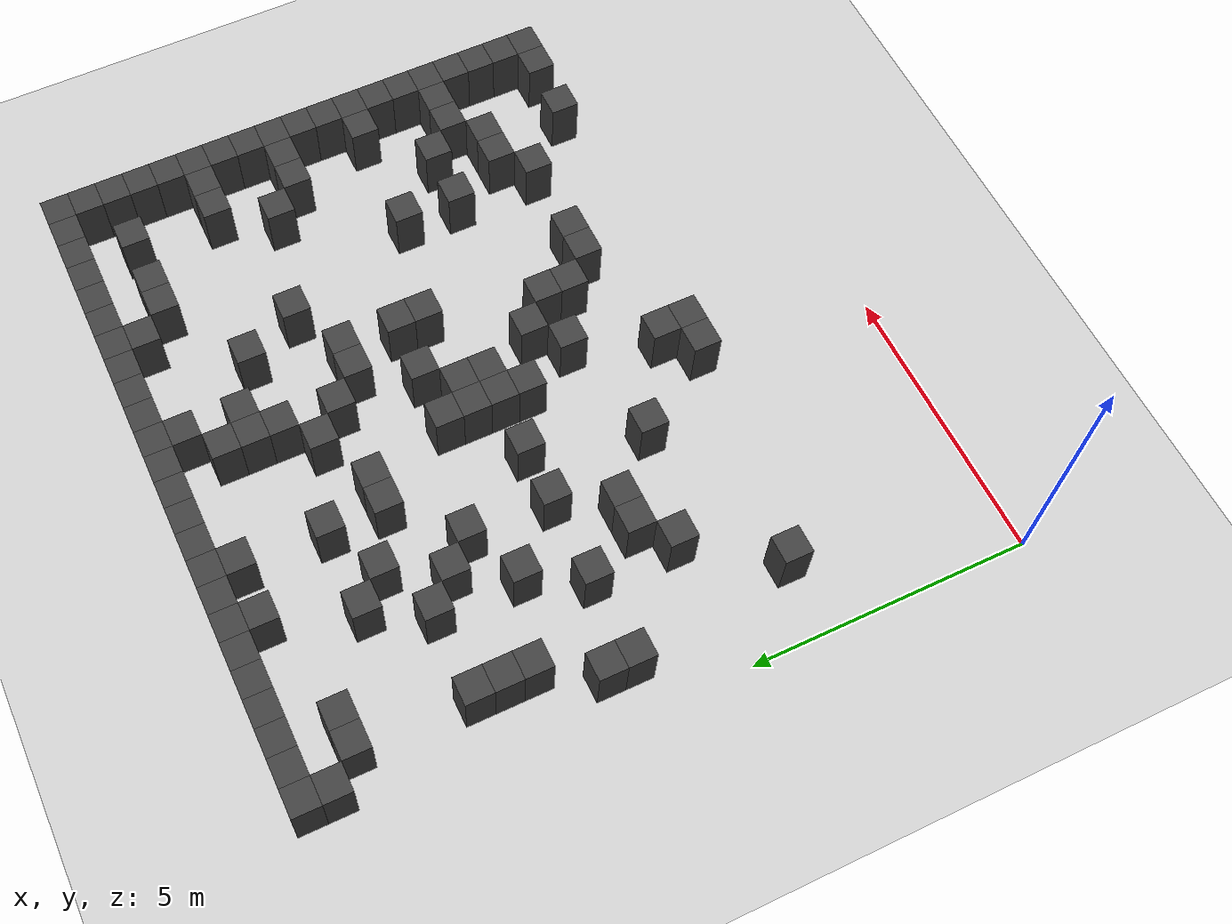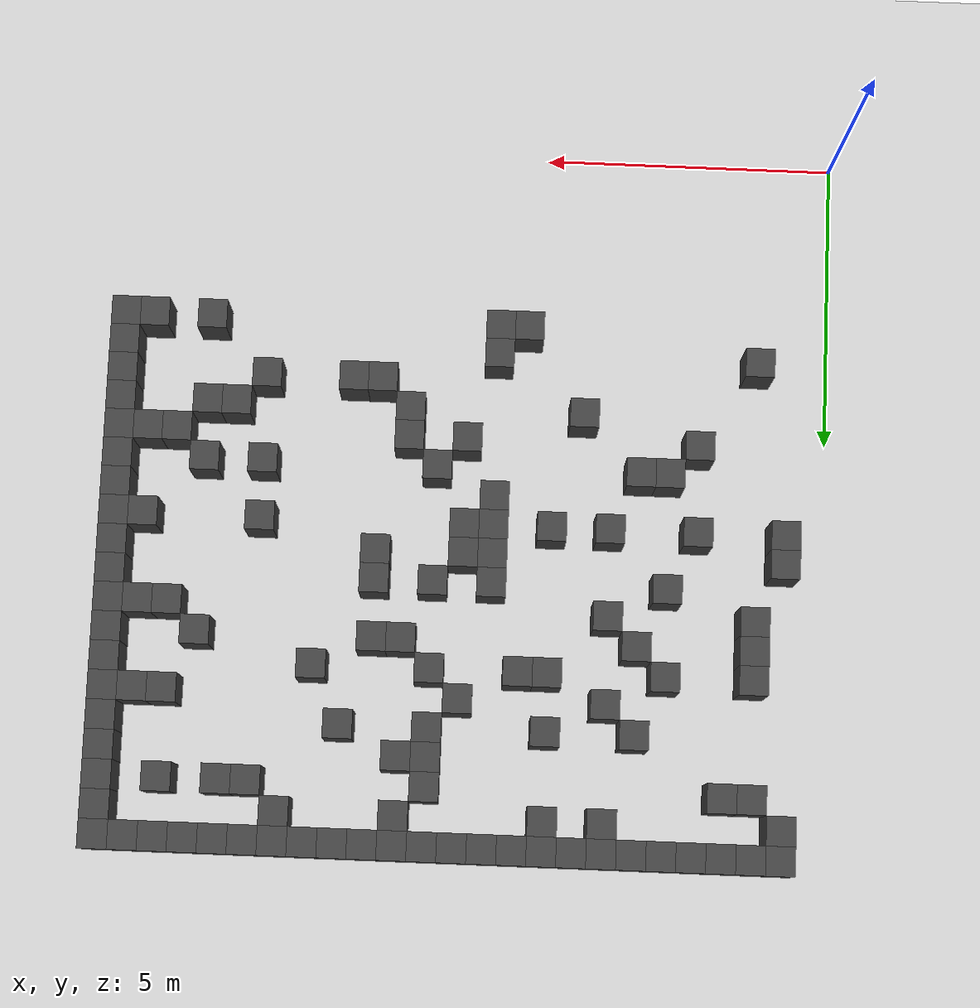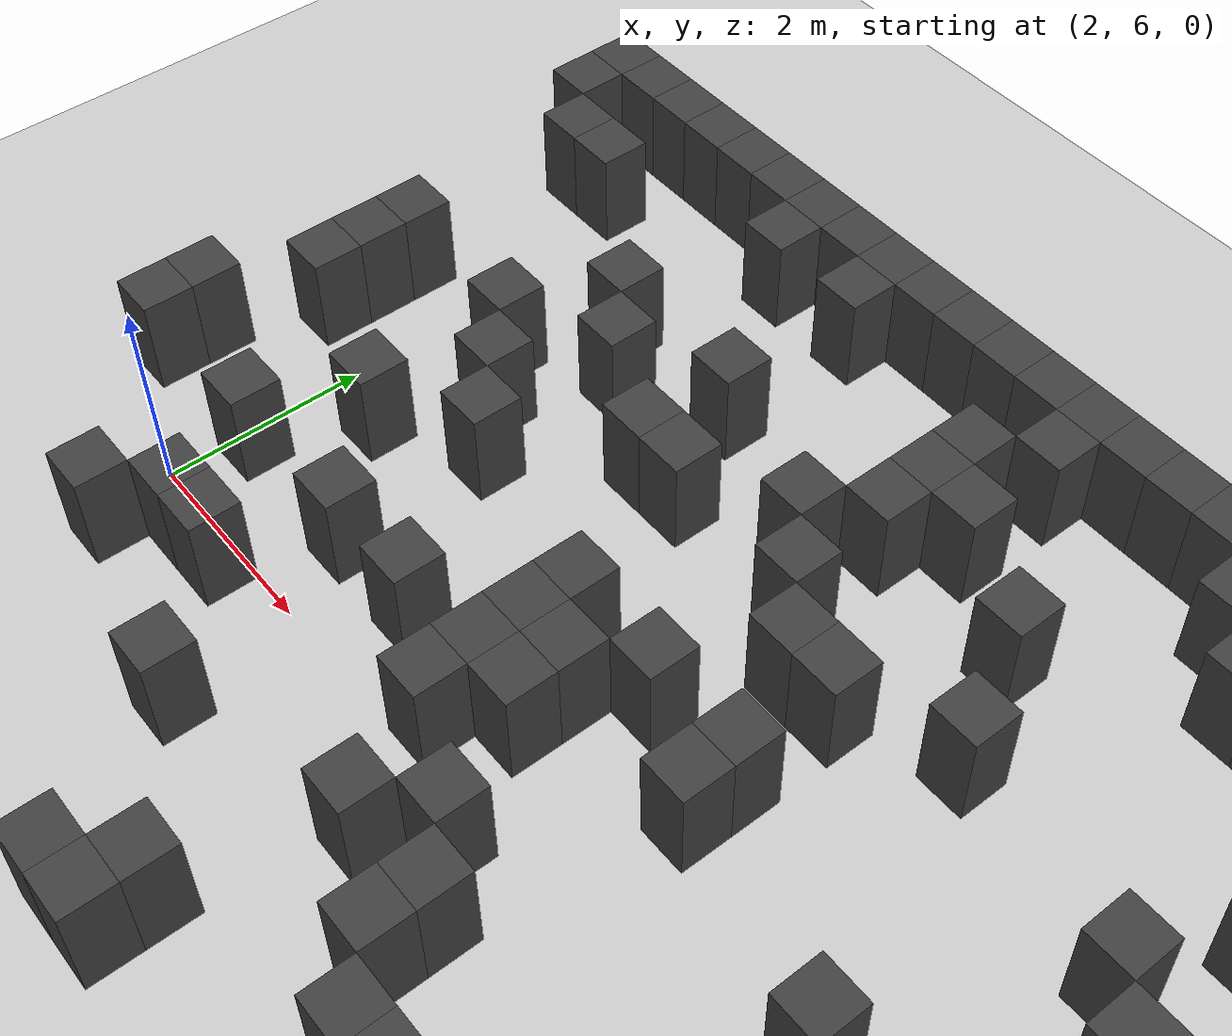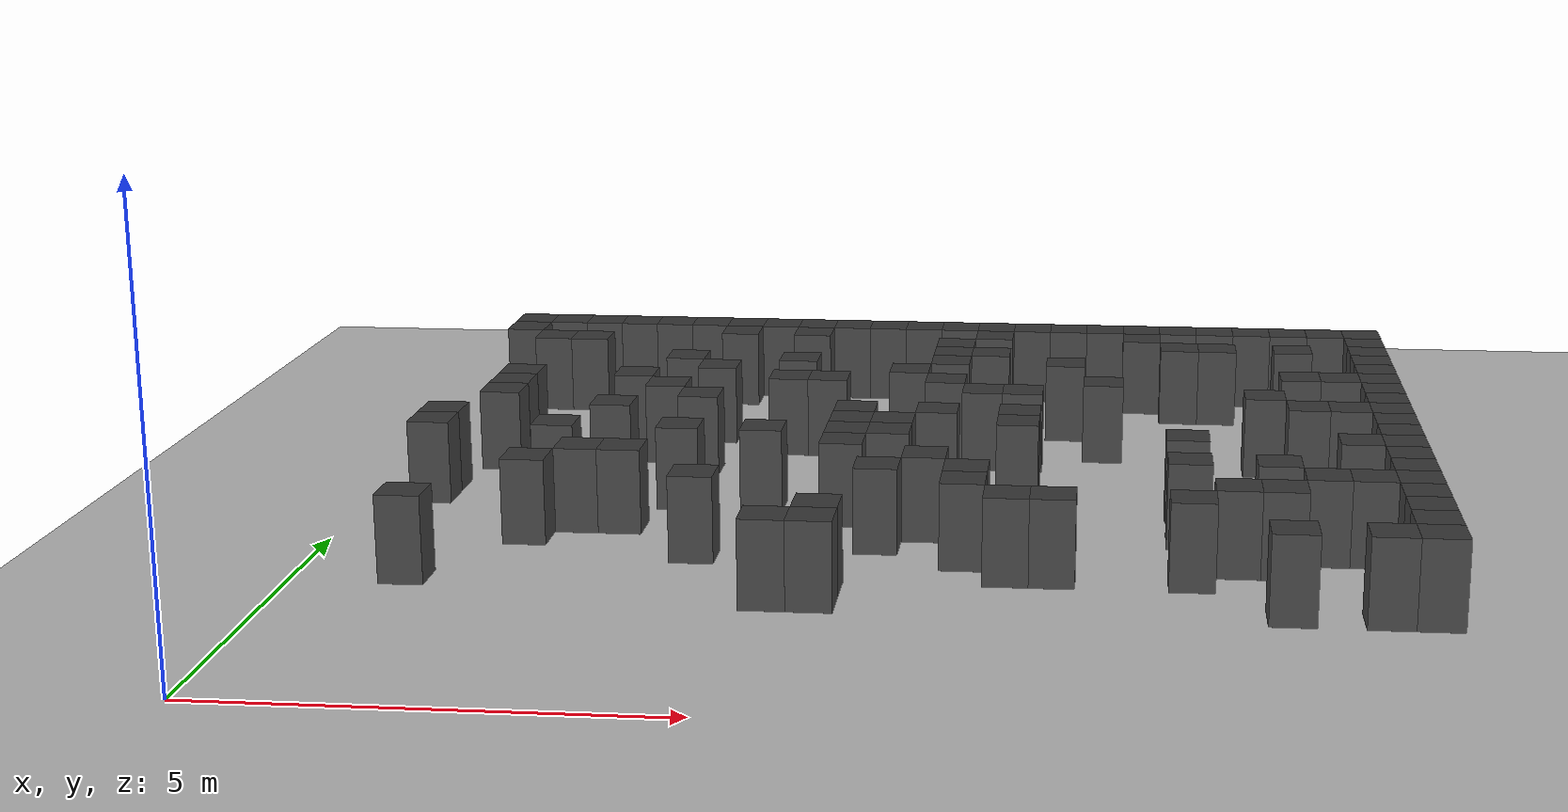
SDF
<sdf version="1.7">
 <world name="map_4581">
  <model name="ground_plane">
   <static>true</static>
   <link name="link">
    <collision name="collision">
     <geometry><plane><normal>0 0 1</normal><size>200 200</size></plane></geometry>
    </collision>
    <visual name="visual">
     <geometry><plane><normal>0 0 1</normal><size>200 200</size></plane></geometry>
     <material><ambient>0.8 0.8 0.8 1</ambient><diffuse>0.8 0.8 0.8 1</diffuse></material>
    </visual>
   </link>
  </model>
  <model name="maze_environment">
   <static>true</static>
   <link name="wall_26">
    <pose>0.750 12.250 0.500 0 0 0</pose>
    <collision name="col"><geometry><box><size>0.5 0.5 1.0</size></box></geometry></collision>
    <visual name="vis">
     <geometry><box><size>0.5 0.5 1.0</size></box></geometry>
     <material><ambient>0.15 0.15 0.15 1</ambient><diffuse>0.25 0.25 0.25 1</diffuse></material>
    </visual>
   </link>
   <link name="wall_27">
    <pose>1.250 12.250 0.500 0 0 0</pose>
    <collision name="col"><geometry><box><size>0.5 0.5 1.0</size></box></geometry></collision>
    <visual name="vis">
     <geometry><box><size>0.5 0.5 1.0</size></box></geometry>
     <material><ambient>0.15 0.15 0.15 1</ambient><diffuse>0.25 0.25 0.25 1</diffuse></material>
    </visual>
   </link>
   <link name="wall_28">
    <pose>1.750 12.250 0.500 0 0 0</pose>
    <collision name="col"><geometry><box><size>0.5 0.5 1.0</size></box></geometry></collision>
    <visual name="vis">
     <geometry><box><size>0.5 0.5 1.0</size></box></geometry>
     <material><ambient>0.15 0.15 0.15 1</ambient><diffuse>0.25 0.25 0.25 1</diffuse></material>
    </visual>
   </link>
   <link name="wall_29">
    <pose>2.250 12.250 0.500 0 0 0</pose>
    <collision name="col"><geometry><box><size>0.5 0.5 1.0</size></box></geometry></collision>
    <visual name="vis">
     <geometry><box><size>0.5 0.5 1.0</size></box></geometry>
     <material><ambient>0.15 0.15 0.15 1</ambient><diffuse>0.25 0.25 0.25 1</diffuse></material>
    </visual>
   </link>
   <link name="wall_30">
    <pose>2.750 12.250 0.500 0 0 0</pose>
    <collision name="col"><geometry><box><size>0.5 0.5 1.0</size></box></geometry></collision>
    <visual name="vis">
     <geometry><box><size>0.5 0.5 1.0</size></box></geometry>
     <material><ambient>0.15 0.15 0.15 1</ambient><diffuse>0.25 0.25 0.25 1</diffuse></material>
    </visual>
   </link>
   <link name="wall_31">
    <pose>3.250 12.250 0.500 0 0 0</pose>
    <collision name="col"><geometry><box><size>0.5 0.5 1.0</size></box></geometry></collision>
    <visual name="vis">
     <geometry><box><size>0.5 0.5 1.0</size></box></geometry>
     <material><ambient>0.15 0.15 0.15 1</ambient><diffuse>0.25 0.25 0.25 1</diffuse></material>
    </visual>
   </link>
   <link name="wall_32">
    <pose>3.750 12.250 0.500 0 0 0</pose>
    <collision name="col"><geometry><box><size>0.5 0.5 1.0</size></box></geometry></collision>
    <visual name="vis">
     <geometry><box><size>0.5 0.5 1.0</size></box></geometry>
     <material><ambient>0.15 0.15 0.15 1</ambient><diffuse>0.25 0.25 0.25 1</diffuse></material>
    </visual>
   </link>
   <link name="wall_33">
    <pose>4.250 12.250 0.500 0 0 0</pose>
    <collision name="col"><geometry><box><size>0.5 0.5 1.0</size></box></geometry></collision>
    <visual name="vis">
     <geometry><box><size>0.5 0.5 1.0</size></box></geometry>
     <material><ambient>0.15 0.15 0.15 1</ambient><diffuse>0.25 0.25 0.25 1</diffuse></material>
    </visual>
   </link>
   <link name="wall_34">
    <pose>4.750 12.250 0.500 0 0 0</pose>
    <collision name="col"><geometry><box><size>0.5 0.5 1.0</size></box></geometry></collision>
    <visual name="vis">
     <geometry><box><size>0.5 0.5 1.0</size></box></geometry>
     <material><ambient>0.15 0.15 0.15 1</ambient><diffuse>0.25 0.25 0.25 1</diffuse></material>
    </visual>
   </link>
   <link name="wall_35">
    <pose>5.250 12.250 0.500 0 0 0</pose>
    <collision name="col"><geometry><box><size>0.5 0.5 1.0</size></box></geometry></collision>
    <visual name="vis">
     <geometry><box><size>0.5 0.5 1.0</size></box></geometry>
     <material><ambient>0.15 0.15 0.15 1</ambient><diffuse>0.25 0.25 0.25 1</diffuse></material>
    </visual>
   </link>
   <link name="wall_36">
    <pose>5.750 12.250 0.500 0 0 0</pose>
    <collision name="col"><geometry><box><size>0.5 0.5 1.0</size></box></geometry></collision>
    <visual name="vis">
     <geometry><box><size>0.5 0.5 1.0</size></box></geometry>
     <material><ambient>0.15 0.15 0.15 1</ambient><diffuse>0.25 0.25 0.25 1</diffuse></material>
    </visual>
   </link>
   <link name="wall_37">
    <pose>6.250 12.250 0.500 0 0 0</pose>
    <collision name="col"><geometry><box><size>0.5 0.5 1.0</size></box></geometry></collision>
    <visual name="vis">
     <geometry><box><size>0.5 0.5 1.0</size></box></geometry>
     <material><ambient>0.15 0.15 0.15 1</ambient><diffuse>0.25 0.25 0.25 1</diffuse></material>
    </visual>
   </link>
   <link name="wall_38">
    <pose>6.750 12.250 0.500 0 0 0</pose>
    <collision name="col"><geometry><box><size>0.5 0.5 1.0</size></box></geometry></collision>
    <visual name="vis">
     <geometry><box><size>0.5 0.5 1.0</size></box></geometry>
     <material><ambient>0.15 0.15 0.15 1</ambient><diffuse>0.25 0.25 0.25 1</diffuse></material>
    </visual>
   </link>
   <link name="wall_39">
    <pose>7.250 12.250 0.500 0 0 0</pose>
    <collision name="col"><geometry><box><size>0.5 0.5 1.0</size></box></geometry></collision>
    <visual name="vis">
     <geometry><box><size>0.5 0.5 1.0</size></box></geometry>
     <material><ambient>0.15 0.15 0.15 1</ambient><diffuse>0.25 0.25 0.25 1</diffuse></material>
    </visual>
   </link>
   <link name="wall_40">
    <pose>7.750 12.250 0.500 0 0 0</pose>
    <collision name="col"><geometry><box><size>0.5 0.5 1.0</size></box></geometry></collision>
    <visual name="vis">
     <geometry><box><size>0.5 0.5 1.0</size></box></geometry>
     <material><ambient>0.15 0.15 0.15 1</ambient><diffuse>0.25 0.25 0.25 1</diffuse></material>
    </visual>
   </link>
   <link name="wall_41">
    <pose>8.250 12.250 0.500 0 0 0</pose>
    <collision name="col"><geometry><box><size>0.5 0.5 1.0</size></box></geometry></collision>
    <visual name="vis">
     <geometry><box><size>0.5 0.5 1.0</size></box></geometry>
     <material><ambient>0.15 0.15 0.15 1</ambient><diffuse>0.25 0.25 0.25 1</diffuse></material>
    </visual>
   </link>
   <link name="wall_42">
    <pose>8.750 12.250 0.500 0 0 0</pose>
    <collision name="col"><geometry><box><size>0.5 0.5 1.0</size></box></geometry></collision>
    <visual name="vis">
     <geometry><box><size>0.5 0.5 1.0</size></box></geometry>
     <material><ambient>0.15 0.15 0.15 1</ambient><diffuse>0.25 0.25 0.25 1</diffuse></material>
    </visual>
   </link>
   <link name="wall_43">
    <pose>9.250 12.250 0.500 0 0 0</pose>
    <collision name="col"><geometry><box><size>0.5 0.5 1.0</size></box></geometry></collision>
    <visual name="vis">
     <geometry><box><size>0.5 0.5 1.0</size></box></geometry>
     <material><ambient>0.15 0.15 0.15 1</ambient><diffuse>0.25 0.25 0.25 1</diffuse></material>
    </visual>
   </link>
   <link name="wall_44">
    <pose>9.750 12.250 0.500 0 0 0</pose>
    <collision name="col"><geometry><box><size>0.5 0.5 1.0</size></box></geometry></collision>
    <visual name="vis">
     <geometry><box><size>0.5 0.5 1.0</size></box></geometry>
     <material><ambient>0.15 0.15 0.15 1</ambient><diffuse>0.25 0.25 0.25 1</diffuse></material>
    </visual>
   </link>
   <link name="wall_45">
    <pose>10.250 12.250 0.500 0 0 0</pose>
    <collision name="col"><geometry><box><size>0.5 0.5 1.0</size></box></geometry></collision>
    <visual name="vis">
     <geometry><box><size>0.5 0.5 1.0</size></box></geometry>
     <material><ambient>0.15 0.15 0.15 1</ambient><diffuse>0.25 0.25 0.25 1</diffuse></material>
    </visual>
   </link>
   <link name="wall_46">
    <pose>10.750 12.250 0.500 0 0 0</pose>
    <collision name="col"><geometry><box><size>0.5 0.5 1.0</size></box></geometry></collision>
    <visual name="vis">
     <geometry><box><size>0.5 0.5 1.0</size></box></geometry>
     <material><ambient>0.15 0.15 0.15 1</ambient><diffuse>0.25 0.25 0.25 1</diffuse></material>
    </visual>
   </link>
   <link name="wall_47">
    <pose>11.250 12.250 0.500 0 0 0</pose>
    <collision name="col"><geometry><box><size>0.5 0.5 1.0</size></box></geometry></collision>
    <visual name="vis">
     <geometry><box><size>0.5 0.5 1.0</size></box></geometry>
     <material><ambient>0.15 0.15 0.15 1</ambient><diffuse>0.25 0.25 0.25 1</diffuse></material>
    </visual>
   </link>
   <link name="wall_48">
    <pose>11.750 12.250 0.500 0 0 0</pose>
    <collision name="col"><geometry><box><size>0.5 0.5 1.0</size></box></geometry></collision>
    <visual name="vis">
     <geometry><box><size>0.5 0.5 1.0</size></box></geometry>
     <material><ambient>0.15 0.15 0.15 1</ambient><diffuse>0.25 0.25 0.25 1</diffuse></material>
    </visual>
   </link>
   <link name="wall_49">
    <pose>12.250 12.250 0.500 0 0 0</pose>
    <collision name="col"><geometry><box><size>0.5 0.5 1.0</size></box></geometry></collision>
    <visual name="vis">
     <geometry><box><size>0.5 0.5 1.0</size></box></geometry>
     <material><ambient>0.15 0.15 0.15 1</ambient><diffuse>0.25 0.25 0.25 1</diffuse></material>
    </visual>
   </link>
   <link name="wall_58">
    <pose>0.750 11.750 0.500 0 0 0</pose>
    <collision name="col"><geometry><box><size>0.5 0.5 1.0</size></box></geometry></collision>
    <visual name="vis">
     <geometry><box><size>0.5 0.5 1.0</size></box></geometry>
     <material><ambient>0.15 0.15 0.15 1</ambient><diffuse>0.25 0.25 0.25 1</diffuse></material>
    </visual>
   </link>
   <link name="wall_59">
    <pose>3.750 11.750 0.500 0 0 0</pose>
    <collision name="col"><geometry><box><size>0.5 0.5 1.0</size></box></geometry></collision>
    <visual name="vis">
     <geometry><box><size>0.5 0.5 1.0</size></box></geometry>
     <material><ambient>0.15 0.15 0.15 1</ambient><diffuse>0.25 0.25 0.25 1</diffuse></material>
    </visual>
   </link>
   <link name="wall_60">
    <pose>4.750 11.750 0.500 0 0 0</pose>
    <collision name="col"><geometry><box><size>0.5 0.5 1.0</size></box></geometry></collision>
    <visual name="vis">
     <geometry><box><size>0.5 0.5 1.0</size></box></geometry>
     <material><ambient>0.15 0.15 0.15 1</ambient><diffuse>0.25 0.25 0.25 1</diffuse></material>
    </visual>
   </link>
   <link name="wall_61">
    <pose>7.250 11.750 0.500 0 0 0</pose>
    <collision name="col"><geometry><box><size>0.5 0.5 1.0</size></box></geometry></collision>
    <visual name="vis">
     <geometry><box><size>0.5 0.5 1.0</size></box></geometry>
     <material><ambient>0.15 0.15 0.15 1</ambient><diffuse>0.25 0.25 0.25 1</diffuse></material>
    </visual>
   </link>
   <link name="wall_62">
    <pose>9.250 11.750 0.500 0 0 0</pose>
    <collision name="col"><geometry><box><size>0.5 0.5 1.0</size></box></geometry></collision>
    <visual name="vis">
     <geometry><box><size>0.5 0.5 1.0</size></box></geometry>
     <material><ambient>0.15 0.15 0.15 1</ambient><diffuse>0.25 0.25 0.25 1</diffuse></material>
    </visual>
   </link>
   <link name="wall_63">
    <pose>12.250 11.750 0.500 0 0 0</pose>
    <collision name="col"><geometry><box><size>0.5 0.5 1.0</size></box></geometry></collision>
    <visual name="vis">
     <geometry><box><size>0.5 0.5 1.0</size></box></geometry>
     <material><ambient>0.15 0.15 0.15 1</ambient><diffuse>0.25 0.25 0.25 1</diffuse></material>
    </visual>
   </link>
   <link name="wall_69">
    <pose>1.250 11.250 0.500 0 0 0</pose>
    <collision name="col"><geometry><box><size>0.5 0.5 1.0</size></box></geometry></collision>
    <visual name="vis">
     <geometry><box><size>0.5 0.5 1.0</size></box></geometry>
     <material><ambient>0.15 0.15 0.15 1</ambient><diffuse>0.25 0.25 0.25 1</diffuse></material>
    </visual>
   </link>
   <link name="wall_70">
    <pose>1.750 11.250 0.500 0 0 0</pose>
    <collision name="col"><geometry><box><size>0.5 0.5 1.0</size></box></geometry></collision>
    <visual name="vis">
     <geometry><box><size>0.5 0.5 1.0</size></box></geometry>
     <material><ambient>0.15 0.15 0.15 1</ambient><diffuse>0.25 0.25 0.25 1</diffuse></material>
    </visual>
   </link>
   <link name="wall_71">
    <pose>6.750 11.250 0.500 0 0 0</pose>
    <collision name="col"><geometry><box><size>0.5 0.5 1.0</size></box></geometry></collision>
    <visual name="vis">
     <geometry><box><size>0.5 0.5 1.0</size></box></geometry>
     <material><ambient>0.15 0.15 0.15 1</ambient><diffuse>0.25 0.25 0.25 1</diffuse></material>
    </visual>
   </link>
   <link name="wall_72">
    <pose>9.750 11.250 0.500 0 0 0</pose>
    <collision name="col"><geometry><box><size>0.5 0.5 1.0</size></box></geometry></collision>
    <visual name="vis">
     <geometry><box><size>0.5 0.5 1.0</size></box></geometry>
     <material><ambient>0.15 0.15 0.15 1</ambient><diffuse>0.25 0.25 0.25 1</diffuse></material>
    </visual>
   </link>
   <link name="wall_73">
    <pose>10.250 11.250 0.500 0 0 0</pose>
    <collision name="col"><geometry><box><size>0.5 0.5 1.0</size></box></geometry></collision>
    <visual name="vis">
     <geometry><box><size>0.5 0.5 1.0</size></box></geometry>
     <material><ambient>0.15 0.15 0.15 1</ambient><diffuse>0.25 0.25 0.25 1</diffuse></material>
    </visual>
   </link>
   <link name="wall_74">
    <pose>11.250 11.250 0.500 0 0 0</pose>
    <collision name="col"><geometry><box><size>0.5 0.5 1.0</size></box></geometry></collision>
    <visual name="vis">
     <geometry><box><size>0.5 0.5 1.0</size></box></geometry>
     <material><ambient>0.15 0.15 0.15 1</ambient><diffuse>0.25 0.25 0.25 1</diffuse></material>
    </visual>
   </link>
   <link name="wall_75">
    <pose>12.250 11.250 0.500 0 0 0</pose>
    <collision name="col"><geometry><box><size>0.5 0.5 1.0</size></box></geometry></collision>
    <visual name="vis">
     <geometry><box><size>0.5 0.5 1.0</size></box></geometry>
     <material><ambient>0.15 0.15 0.15 1</ambient><diffuse>0.25 0.25 0.25 1</diffuse></material>
    </visual>
   </link>
   <link name="wall_83">
    <pose>6.750 10.750 0.500 0 0 0</pose>
    <collision name="col"><geometry><box><size>0.5 0.5 1.0</size></box></geometry></collision>
    <visual name="vis">
     <geometry><box><size>0.5 0.5 1.0</size></box></geometry>
     <material><ambient>0.15 0.15 0.15 1</ambient><diffuse>0.25 0.25 0.25 1</diffuse></material>
    </visual>
   </link>
   <link name="wall_84">
    <pose>7.250 10.750 0.500 0 0 0</pose>
    <collision name="col"><geometry><box><size>0.5 0.5 1.0</size></box></geometry></collision>
    <visual name="vis">
     <geometry><box><size>0.5 0.5 1.0</size></box></geometry>
     <material><ambient>0.15 0.15 0.15 1</ambient><diffuse>0.25 0.25 0.25 1</diffuse></material>
    </visual>
   </link>
   <link name="wall_85">
    <pose>12.250 10.750 0.500 0 0 0</pose>
    <collision name="col"><geometry><box><size>0.5 0.5 1.0</size></box></geometry></collision>
    <visual name="vis">
     <geometry><box><size>0.5 0.5 1.0</size></box></geometry>
     <material><ambient>0.15 0.15 0.15 1</ambient><diffuse>0.25 0.25 0.25 1</diffuse></material>
    </visual>
   </link>
   <link name="wall_93">
    <pose>3.250 10.250 0.500 0 0 0</pose>
    <collision name="col"><geometry><box><size>0.5 0.5 1.0</size></box></geometry></collision>
    <visual name="vis">
     <geometry><box><size>0.5 0.5 1.0</size></box></geometry>
     <material><ambient>0.15 0.15 0.15 1</ambient><diffuse>0.25 0.25 0.25 1</diffuse></material>
    </visual>
   </link>
   <link name="wall_94">
    <pose>4.750 10.250 0.500 0 0 0</pose>
    <collision name="col"><geometry><box><size>0.5 0.5 1.0</size></box></geometry></collision>
    <visual name="vis">
     <geometry><box><size>0.5 0.5 1.0</size></box></geometry>
     <material><ambient>0.15 0.15 0.15 1</ambient><diffuse>0.25 0.25 0.25 1</diffuse></material>
    </visual>
   </link>
   <link name="wall_95">
    <pose>6.750 10.250 0.500 0 0 0</pose>
    <collision name="col"><geometry><box><size>0.5 0.5 1.0</size></box></geometry></collision>
    <visual name="vis">
     <geometry><box><size>0.5 0.5 1.0</size></box></geometry>
     <material><ambient>0.15 0.15 0.15 1</ambient><diffuse>0.25 0.25 0.25 1</diffuse></material>
    </visual>
   </link>
   <link name="wall_96">
    <pose>8.250 10.250 0.500 0 0 0</pose>
    <collision name="col"><geometry><box><size>0.5 0.5 1.0</size></box></geometry></collision>
    <visual name="vis">
     <geometry><box><size>0.5 0.5 1.0</size></box></geometry>
     <material><ambient>0.15 0.15 0.15 1</ambient><diffuse>0.25 0.25 0.25 1</diffuse></material>
    </visual>
   </link>
   <link name="wall_97">
    <pose>12.250 10.250 0.500 0 0 0</pose>
    <collision name="col"><geometry><box><size>0.5 0.5 1.0</size></box></geometry></collision>
    <visual name="vis">
     <geometry><box><size>0.5 0.5 1.0</size></box></geometry>
     <material><ambient>0.15 0.15 0.15 1</ambient><diffuse>0.25 0.25 0.25 1</diffuse></material>
    </visual>
   </link>
   <link name="wall_103">
    <pose>3.750 9.750 0.500 0 0 0</pose>
    <collision name="col"><geometry><box><size>0.5 0.5 1.0</size></box></geometry></collision>
    <visual name="vis">
     <geometry><box><size>0.5 0.5 1.0</size></box></geometry>
     <material><ambient>0.15 0.15 0.15 1</ambient><diffuse>0.25 0.25 0.25 1</diffuse></material>
    </visual>
   </link>
   <link name="wall_104">
    <pose>6.250 9.750 0.500 0 0 0</pose>
    <collision name="col"><geometry><box><size>0.5 0.5 1.0</size></box></geometry></collision>
    <visual name="vis">
     <geometry><box><size>0.5 0.5 1.0</size></box></geometry>
     <material><ambient>0.15 0.15 0.15 1</ambient><diffuse>0.25 0.25 0.25 1</diffuse></material>
    </visual>
   </link>
   <link name="wall_105">
    <pose>11.250 9.750 0.500 0 0 0</pose>
    <collision name="col"><geometry><box><size>0.5 0.5 1.0</size></box></geometry></collision>
    <visual name="vis">
     <geometry><box><size>0.5 0.5 1.0</size></box></geometry>
     <material><ambient>0.15 0.15 0.15 1</ambient><diffuse>0.25 0.25 0.25 1</diffuse></material>
    </visual>
   </link>
   <link name="wall_106">
    <pose>11.750 9.750 0.500 0 0 0</pose>
    <collision name="col"><geometry><box><size>0.5 0.5 1.0</size></box></geometry></collision>
    <visual name="vis">
     <geometry><box><size>0.5 0.5 1.0</size></box></geometry>
     <material><ambient>0.15 0.15 0.15 1</ambient><diffuse>0.25 0.25 0.25 1</diffuse></material>
    </visual>
   </link>
   <link name="wall_107">
    <pose>12.250 9.750 0.500 0 0 0</pose>
    <collision name="col"><geometry><box><size>0.5 0.5 1.0</size></box></geometry></collision>
    <visual name="vis">
     <geometry><box><size>0.5 0.5 1.0</size></box></geometry>
     <material><ambient>0.15 0.15 0.15 1</ambient><diffuse>0.25 0.25 0.25 1</diffuse></material>
    </visual>
   </link>
   <link name="wall_114">
    <pose>1.250 9.250 0.500 0 0 0</pose>
    <collision name="col"><geometry><box><size>0.5 0.5 1.0</size></box></geometry></collision>
    <visual name="vis">
     <geometry><box><size>0.5 0.5 1.0</size></box></geometry>
     <material><ambient>0.15 0.15 0.15 1</ambient><diffuse>0.25 0.25 0.25 1</diffuse></material>
    </visual>
   </link>
   <link name="wall_115">
    <pose>2.750 9.250 0.500 0 0 0</pose>
    <collision name="col"><geometry><box><size>0.5 0.5 1.0</size></box></geometry></collision>
    <visual name="vis">
     <geometry><box><size>0.5 0.5 1.0</size></box></geometry>
     <material><ambient>0.15 0.15 0.15 1</ambient><diffuse>0.25 0.25 0.25 1</diffuse></material>
    </visual>
   </link>
   <link name="wall_116">
    <pose>4.750 9.250 0.500 0 0 0</pose>
    <collision name="col"><geometry><box><size>0.5 0.5 1.0</size></box></geometry></collision>
    <visual name="vis">
     <geometry><box><size>0.5 0.5 1.0</size></box></geometry>
     <material><ambient>0.15 0.15 0.15 1</ambient><diffuse>0.25 0.25 0.25 1</diffuse></material>
    </visual>
   </link>
   <link name="wall_117">
    <pose>5.250 9.250 0.500 0 0 0</pose>
    <collision name="col"><geometry><box><size>0.5 0.5 1.0</size></box></geometry></collision>
    <visual name="vis">
     <geometry><box><size>0.5 0.5 1.0</size></box></geometry>
     <material><ambient>0.15 0.15 0.15 1</ambient><diffuse>0.25 0.25 0.25 1</diffuse></material>
    </visual>
   </link>
   <link name="wall_118">
    <pose>6.750 9.250 0.500 0 0 0</pose>
    <collision name="col"><geometry><box><size>0.5 0.5 1.0</size></box></geometry></collision>
    <visual name="vis">
     <geometry><box><size>0.5 0.5 1.0</size></box></geometry>
     <material><ambient>0.15 0.15 0.15 1</ambient><diffuse>0.25 0.25 0.25 1</diffuse></material>
    </visual>
   </link>
   <link name="wall_119">
    <pose>8.750 9.250 0.500 0 0 0</pose>
    <collision name="col"><geometry><box><size>0.5 0.5 1.0</size></box></geometry></collision>
    <visual name="vis">
     <geometry><box><size>0.5 0.5 1.0</size></box></geometry>
     <material><ambient>0.15 0.15 0.15 1</ambient><diffuse>0.25 0.25 0.25 1</diffuse></material>
    </visual>
   </link>
   <link name="wall_120">
    <pose>12.250 9.250 0.500 0 0 0</pose>
    <collision name="col"><geometry><box><size>0.5 0.5 1.0</size></box></geometry></collision>
    <visual name="vis">
     <geometry><box><size>0.5 0.5 1.0</size></box></geometry>
     <material><ambient>0.15 0.15 0.15 1</ambient><diffuse>0.25 0.25 0.25 1</diffuse></material>
    </visual>
   </link>
   <link name="wall_125">
    <pose>1.250 8.750 0.500 0 0 0</pose>
    <collision name="col"><geometry><box><size>0.5 0.5 1.0</size></box></geometry></collision>
    <visual name="vis">
     <geometry><box><size>0.5 0.5 1.0</size></box></geometry>
     <material><ambient>0.15 0.15 0.15 1</ambient><diffuse>0.25 0.25 0.25 1</diffuse></material>
    </visual>
   </link>
   <link name="wall_126">
    <pose>3.250 8.750 0.500 0 0 0</pose>
    <collision name="col"><geometry><box><size>0.5 0.5 1.0</size></box></geometry></collision>
    <visual name="vis">
     <geometry><box><size>0.5 0.5 1.0</size></box></geometry>
     <material><ambient>0.15 0.15 0.15 1</ambient><diffuse>0.25 0.25 0.25 1</diffuse></material>
    </visual>
   </link>
   <link name="wall_127">
    <pose>7.250 8.750 0.500 0 0 0</pose>
    <collision name="col"><geometry><box><size>0.5 0.5 1.0</size></box></geometry></collision>
    <visual name="vis">
     <geometry><box><size>0.5 0.5 1.0</size></box></geometry>
     <material><ambient>0.15 0.15 0.15 1</ambient><diffuse>0.25 0.25 0.25 1</diffuse></material>
    </visual>
   </link>
   <link name="wall_128">
    <pose>7.750 8.750 0.500 0 0 0</pose>
    <collision name="col"><geometry><box><size>0.5 0.5 1.0</size></box></geometry></collision>
    <visual name="vis">
     <geometry><box><size>0.5 0.5 1.0</size></box></geometry>
     <material><ambient>0.15 0.15 0.15 1</ambient><diffuse>0.25 0.25 0.25 1</diffuse></material>
    </visual>
   </link>
   <link name="wall_129">
    <pose>10.750 8.750 0.500 0 0 0</pose>
    <collision name="col"><geometry><box><size>0.5 0.5 1.0</size></box></geometry></collision>
    <visual name="vis">
     <geometry><box><size>0.5 0.5 1.0</size></box></geometry>
     <material><ambient>0.15 0.15 0.15 1</ambient><diffuse>0.25 0.25 0.25 1</diffuse></material>
    </visual>
   </link>
   <link name="wall_130">
    <pose>12.250 8.750 0.500 0 0 0</pose>
    <collision name="col"><geometry><box><size>0.5 0.5 1.0</size></box></geometry></collision>
    <visual name="vis">
     <geometry><box><size>0.5 0.5 1.0</size></box></geometry>
     <material><ambient>0.15 0.15 0.15 1</ambient><diffuse>0.25 0.25 0.25 1</diffuse></material>
    </visual>
   </link>
   <link name="wall_139">
    <pose>1.250 8.250 0.500 0 0 0</pose>
    <collision name="col"><geometry><box><size>0.5 0.5 1.0</size></box></geometry></collision>
    <visual name="vis">
     <geometry><box><size>0.5 0.5 1.0</size></box></geometry>
     <material><ambient>0.15 0.15 0.15 1</ambient><diffuse>0.25 0.25 0.25 1</diffuse></material>
    </visual>
   </link>
   <link name="wall_140">
    <pose>3.750 8.250 0.500 0 0 0</pose>
    <collision name="col"><geometry><box><size>0.5 0.5 1.0</size></box></geometry></collision>
    <visual name="vis">
     <geometry><box><size>0.5 0.5 1.0</size></box></geometry>
     <material><ambient>0.15 0.15 0.15 1</ambient><diffuse>0.25 0.25 0.25 1</diffuse></material>
    </visual>
   </link>
   <link name="wall_141">
    <pose>11.250 8.250 0.500 0 0 0</pose>
    <collision name="col"><geometry><box><size>0.5 0.5 1.0</size></box></geometry></collision>
    <visual name="vis">
     <geometry><box><size>0.5 0.5 1.0</size></box></geometry>
     <material><ambient>0.15 0.15 0.15 1</ambient><diffuse>0.25 0.25 0.25 1</diffuse></material>
    </visual>
   </link>
   <link name="wall_142">
    <pose>11.750 8.250 0.500 0 0 0</pose>
    <collision name="col"><geometry><box><size>0.5 0.5 1.0</size></box></geometry></collision>
    <visual name="vis">
     <geometry><box><size>0.5 0.5 1.0</size></box></geometry>
     <material><ambient>0.15 0.15 0.15 1</ambient><diffuse>0.25 0.25 0.25 1</diffuse></material>
    </visual>
   </link>
   <link name="wall_143">
    <pose>12.250 8.250 0.500 0 0 0</pose>
    <collision name="col"><geometry><box><size>0.5 0.5 1.0</size></box></geometry></collision>
    <visual name="vis">
     <geometry><box><size>0.5 0.5 1.0</size></box></geometry>
     <material><ambient>0.15 0.15 0.15 1</ambient><diffuse>0.25 0.25 0.25 1</diffuse></material>
    </visual>
   </link>
   <link name="wall_152">
    <pose>2.750 7.750 0.500 0 0 0</pose>
    <collision name="col"><geometry><box><size>0.5 0.5 1.0</size></box></geometry></collision>
    <visual name="vis">
     <geometry><box><size>0.5 0.5 1.0</size></box></geometry>
     <material><ambient>0.15 0.15 0.15 1</ambient><diffuse>0.25 0.25 0.25 1</diffuse></material>
    </visual>
   </link>
   <link name="wall_153">
    <pose>5.750 7.750 0.500 0 0 0</pose>
    <collision name="col"><geometry><box><size>0.5 0.5 1.0</size></box></geometry></collision>
    <visual name="vis">
     <geometry><box><size>0.5 0.5 1.0</size></box></geometry>
     <material><ambient>0.15 0.15 0.15 1</ambient><diffuse>0.25 0.25 0.25 1</diffuse></material>
    </visual>
   </link>
   <link name="wall_154">
    <pose>6.750 7.750 0.500 0 0 0</pose>
    <collision name="col"><geometry><box><size>0.5 0.5 1.0</size></box></geometry></collision>
    <visual name="vis">
     <geometry><box><size>0.5 0.5 1.0</size></box></geometry>
     <material><ambient>0.15 0.15 0.15 1</ambient><diffuse>0.25 0.25 0.25 1</diffuse></material>
    </visual>
   </link>
   <link name="wall_155">
    <pose>7.750 7.750 0.500 0 0 0</pose>
    <collision name="col"><geometry><box><size>0.5 0.5 1.0</size></box></geometry></collision>
    <visual name="vis">
     <geometry><box><size>0.5 0.5 1.0</size></box></geometry>
     <material><ambient>0.15 0.15 0.15 1</ambient><diffuse>0.25 0.25 0.25 1</diffuse></material>
    </visual>
   </link>
   <link name="wall_156">
    <pose>12.250 7.750 0.500 0 0 0</pose>
    <collision name="col"><geometry><box><size>0.5 0.5 1.0</size></box></geometry></collision>
    <visual name="vis">
     <geometry><box><size>0.5 0.5 1.0</size></box></geometry>
     <material><ambient>0.15 0.15 0.15 1</ambient><diffuse>0.25 0.25 0.25 1</diffuse></material>
    </visual>
   </link>
   <link name="wall_161">
    <pose>0.750 7.250 0.500 0 0 0</pose>
    <collision name="col"><geometry><box><size>0.5 0.5 1.0</size></box></geometry></collision>
    <visual name="vis">
     <geometry><box><size>0.5 0.5 1.0</size></box></geometry>
     <material><ambient>0.15 0.15 0.15 1</ambient><diffuse>0.25 0.25 0.25 1</diffuse></material>
    </visual>
   </link>
   <link name="wall_162">
    <pose>5.750 7.250 0.500 0 0 0</pose>
    <collision name="col"><geometry><box><size>0.5 0.5 1.0</size></box></geometry></collision>
    <visual name="vis">
     <geometry><box><size>0.5 0.5 1.0</size></box></geometry>
     <material><ambient>0.15 0.15 0.15 1</ambient><diffuse>0.25 0.25 0.25 1</diffuse></material>
    </visual>
   </link>
   <link name="wall_163">
    <pose>6.250 7.250 0.500 0 0 0</pose>
    <collision name="col"><geometry><box><size>0.5 0.5 1.0</size></box></geometry></collision>
    <visual name="vis">
     <geometry><box><size>0.5 0.5 1.0</size></box></geometry>
     <material><ambient>0.15 0.15 0.15 1</ambient><diffuse>0.25 0.25 0.25 1</diffuse></material>
    </visual>
   </link>
   <link name="wall_164">
    <pose>7.750 7.250 0.500 0 0 0</pose>
    <collision name="col"><geometry><box><size>0.5 0.5 1.0</size></box></geometry></collision>
    <visual name="vis">
     <geometry><box><size>0.5 0.5 1.0</size></box></geometry>
     <material><ambient>0.15 0.15 0.15 1</ambient><diffuse>0.25 0.25 0.25 1</diffuse></material>
    </visual>
   </link>
   <link name="wall_165">
    <pose>12.250 7.250 0.500 0 0 0</pose>
    <collision name="col"><geometry><box><size>0.5 0.5 1.0</size></box></geometry></collision>
    <visual name="vis">
     <geometry><box><size>0.5 0.5 1.0</size></box></geometry>
     <material><ambient>0.15 0.15 0.15 1</ambient><diffuse>0.25 0.25 0.25 1</diffuse></material>
    </visual>
   </link>
   <link name="wall_173">
    <pose>0.750 6.750 0.500 0 0 0</pose>
    <collision name="col"><geometry><box><size>0.5 0.5 1.0</size></box></geometry></collision>
    <visual name="vis">
     <geometry><box><size>0.5 0.5 1.0</size></box></geometry>
     <material><ambient>0.15 0.15 0.15 1</ambient><diffuse>0.25 0.25 0.25 1</diffuse></material>
    </visual>
   </link>
   <link name="wall_174">
    <pose>2.250 6.750 0.500 0 0 0</pose>
    <collision name="col"><geometry><box><size>0.5 0.5 1.0</size></box></geometry></collision>
    <visual name="vis">
     <geometry><box><size>0.5 0.5 1.0</size></box></geometry>
     <material><ambient>0.15 0.15 0.15 1</ambient><diffuse>0.25 0.25 0.25 1</diffuse></material>
    </visual>
   </link>
   <link name="wall_175">
    <pose>3.750 6.750 0.500 0 0 0</pose>
    <collision name="col"><geometry><box><size>0.5 0.5 1.0</size></box></geometry></collision>
    <visual name="vis">
     <geometry><box><size>0.5 0.5 1.0</size></box></geometry>
     <material><ambient>0.15 0.15 0.15 1</ambient><diffuse>0.25 0.25 0.25 1</diffuse></material>
    </visual>
   </link>
   <link name="wall_176">
    <pose>4.750 6.750 0.500 0 0 0</pose>
    <collision name="col"><geometry><box><size>0.5 0.5 1.0</size></box></geometry></collision>
    <visual name="vis">
     <geometry><box><size>0.5 0.5 1.0</size></box></geometry>
     <material><ambient>0.15 0.15 0.15 1</ambient><diffuse>0.25 0.25 0.25 1</diffuse></material>
    </visual>
   </link>
   <link name="wall_177">
    <pose>5.750 6.750 0.500 0 0 0</pose>
    <collision name="col"><geometry><box><size>0.5 0.5 1.0</size></box></geometry></collision>
    <visual name="vis">
     <geometry><box><size>0.5 0.5 1.0</size></box></geometry>
     <material><ambient>0.15 0.15 0.15 1</ambient><diffuse>0.25 0.25 0.25 1</diffuse></material>
    </visual>
   </link>
   <link name="wall_178">
    <pose>6.250 6.750 0.500 0 0 0</pose>
    <collision name="col"><geometry><box><size>0.5 0.5 1.0</size></box></geometry></collision>
    <visual name="vis">
     <geometry><box><size>0.5 0.5 1.0</size></box></geometry>
     <material><ambient>0.15 0.15 0.15 1</ambient><diffuse>0.25 0.25 0.25 1</diffuse></material>
    </visual>
   </link>
   <link name="wall_179">
    <pose>9.750 6.750 0.500 0 0 0</pose>
    <collision name="col"><geometry><box><size>0.5 0.5 1.0</size></box></geometry></collision>
    <visual name="vis">
     <geometry><box><size>0.5 0.5 1.0</size></box></geometry>
     <material><ambient>0.15 0.15 0.15 1</ambient><diffuse>0.25 0.25 0.25 1</diffuse></material>
    </visual>
   </link>
   <link name="wall_180">
    <pose>11.750 6.750 0.500 0 0 0</pose>
    <collision name="col"><geometry><box><size>0.5 0.5 1.0</size></box></geometry></collision>
    <visual name="vis">
     <geometry><box><size>0.5 0.5 1.0</size></box></geometry>
     <material><ambient>0.15 0.15 0.15 1</ambient><diffuse>0.25 0.25 0.25 1</diffuse></material>
    </visual>
   </link>
   <link name="wall_181">
    <pose>12.250 6.750 0.500 0 0 0</pose>
    <collision name="col"><geometry><box><size>0.5 0.5 1.0</size></box></geometry></collision>
    <visual name="vis">
     <geometry><box><size>0.5 0.5 1.0</size></box></geometry>
     <material><ambient>0.15 0.15 0.15 1</ambient><diffuse>0.25 0.25 0.25 1</diffuse></material>
    </visual>
   </link>
   <link name="wall_191">
    <pose>5.750 6.250 0.500 0 0 0</pose>
    <collision name="col"><geometry><box><size>0.5 0.5 1.0</size></box></geometry></collision>
    <visual name="vis">
     <geometry><box><size>0.5 0.5 1.0</size></box></geometry>
     <material><ambient>0.15 0.15 0.15 1</ambient><diffuse>0.25 0.25 0.25 1</diffuse></material>
    </visual>
   </link>
   <link name="wall_192">
    <pose>12.250 6.250 0.500 0 0 0</pose>
    <collision name="col"><geometry><box><size>0.5 0.5 1.0</size></box></geometry></collision>
    <visual name="vis">
     <geometry><box><size>0.5 0.5 1.0</size></box></geometry>
     <material><ambient>0.15 0.15 0.15 1</ambient><diffuse>0.25 0.25 0.25 1</diffuse></material>
    </visual>
   </link>
   <link name="wall_202">
    <pose>2.750 5.750 0.500 0 0 0</pose>
    <collision name="col"><geometry><box><size>0.5 0.5 1.0</size></box></geometry></collision>
    <visual name="vis">
     <geometry><box><size>0.5 0.5 1.0</size></box></geometry>
     <material><ambient>0.15 0.15 0.15 1</ambient><diffuse>0.25 0.25 0.25 1</diffuse></material>
    </visual>
   </link>
   <link name="wall_203">
    <pose>3.250 5.750 0.500 0 0 0</pose>
    <collision name="col"><geometry><box><size>0.5 0.5 1.0</size></box></geometry></collision>
    <visual name="vis">
     <geometry><box><size>0.5 0.5 1.0</size></box></geometry>
     <material><ambient>0.15 0.15 0.15 1</ambient><diffuse>0.25 0.25 0.25 1</diffuse></material>
    </visual>
   </link>
   <link name="wall_204">
    <pose>6.750 5.750 0.500 0 0 0</pose>
    <collision name="col"><geometry><box><size>0.5 0.5 1.0</size></box></geometry></collision>
    <visual name="vis">
     <geometry><box><size>0.5 0.5 1.0</size></box></geometry>
     <material><ambient>0.15 0.15 0.15 1</ambient><diffuse>0.25 0.25 0.25 1</diffuse></material>
    </visual>
   </link>
   <link name="wall_205">
    <pose>9.750 5.750 0.500 0 0 0</pose>
    <collision name="col"><geometry><box><size>0.5 0.5 1.0</size></box></geometry></collision>
    <visual name="vis">
     <geometry><box><size>0.5 0.5 1.0</size></box></geometry>
     <material><ambient>0.15 0.15 0.15 1</ambient><diffuse>0.25 0.25 0.25 1</diffuse></material>
    </visual>
   </link>
   <link name="wall_206">
    <pose>10.750 5.750 0.500 0 0 0</pose>
    <collision name="col"><geometry><box><size>0.5 0.5 1.0</size></box></geometry></collision>
    <visual name="vis">
     <geometry><box><size>0.5 0.5 1.0</size></box></geometry>
     <material><ambient>0.15 0.15 0.15 1</ambient><diffuse>0.25 0.25 0.25 1</diffuse></material>
    </visual>
   </link>
   <link name="wall_207">
    <pose>12.250 5.750 0.500 0 0 0</pose>
    <collision name="col"><geometry><box><size>0.5 0.5 1.0</size></box></geometry></collision>
    <visual name="vis">
     <geometry><box><size>0.5 0.5 1.0</size></box></geometry>
     <material><ambient>0.15 0.15 0.15 1</ambient><diffuse>0.25 0.25 0.25 1</diffuse></material>
    </visual>
   </link>
   <link name="wall_217">
    <pose>2.250 5.250 0.500 0 0 0</pose>
    <collision name="col"><geometry><box><size>0.5 0.5 1.0</size></box></geometry></collision>
    <visual name="vis">
     <geometry><box><size>0.5 0.5 1.0</size></box></geometry>
     <material><ambient>0.15 0.15 0.15 1</ambient><diffuse>0.25 0.25 0.25 1</diffuse></material>
    </visual>
   </link>
   <link name="wall_218">
    <pose>6.250 5.250 0.500 0 0 0</pose>
    <collision name="col"><geometry><box><size>0.5 0.5 1.0</size></box></geometry></collision>
    <visual name="vis">
     <geometry><box><size>0.5 0.5 1.0</size></box></geometry>
     <material><ambient>0.15 0.15 0.15 1</ambient><diffuse>0.25 0.25 0.25 1</diffuse></material>
    </visual>
   </link>
   <link name="wall_219">
    <pose>7.250 5.250 0.500 0 0 0</pose>
    <collision name="col"><geometry><box><size>0.5 0.5 1.0</size></box></geometry></collision>
    <visual name="vis">
     <geometry><box><size>0.5 0.5 1.0</size></box></geometry>
     <material><ambient>0.15 0.15 0.15 1</ambient><diffuse>0.25 0.25 0.25 1</diffuse></material>
    </visual>
   </link>
   <link name="wall_220">
    <pose>11.250 5.250 0.500 0 0 0</pose>
    <collision name="col"><geometry><box><size>0.5 0.5 1.0</size></box></geometry></collision>
    <visual name="vis">
     <geometry><box><size>0.5 0.5 1.0</size></box></geometry>
     <material><ambient>0.15 0.15 0.15 1</ambient><diffuse>0.25 0.25 0.25 1</diffuse></material>
    </visual>
   </link>
   <link name="wall_221">
    <pose>11.750 5.250 0.500 0 0 0</pose>
    <collision name="col"><geometry><box><size>0.5 0.5 1.0</size></box></geometry></collision>
    <visual name="vis">
     <geometry><box><size>0.5 0.5 1.0</size></box></geometry>
     <material><ambient>0.15 0.15 0.15 1</ambient><diffuse>0.25 0.25 0.25 1</diffuse></material>
    </visual>
   </link>
   <link name="wall_222">
    <pose>12.250 5.250 0.500 0 0 0</pose>
    <collision name="col"><geometry><box><size>0.5 0.5 1.0</size></box></geometry></collision>
    <visual name="vis">
     <geometry><box><size>0.5 0.5 1.0</size></box></geometry>
     <material><ambient>0.15 0.15 0.15 1</ambient><diffuse>0.25 0.25 0.25 1</diffuse></material>
    </visual>
   </link>
   <link name="wall_230">
    <pose>4.250 4.750 0.500 0 0 0</pose>
    <collision name="col"><geometry><box><size>0.5 0.5 1.0</size></box></geometry></collision>
    <visual name="vis">
     <geometry><box><size>0.5 0.5 1.0</size></box></geometry>
     <material><ambient>0.15 0.15 0.15 1</ambient><diffuse>0.25 0.25 0.25 1</diffuse></material>
    </visual>
   </link>
   <link name="wall_231">
    <pose>7.250 4.750 0.500 0 0 0</pose>
    <collision name="col"><geometry><box><size>0.5 0.5 1.0</size></box></geometry></collision>
    <visual name="vis">
     <geometry><box><size>0.5 0.5 1.0</size></box></geometry>
     <material><ambient>0.15 0.15 0.15 1</ambient><diffuse>0.25 0.25 0.25 1</diffuse></material>
    </visual>
   </link>
   <link name="wall_232">
    <pose>10.250 4.750 0.500 0 0 0</pose>
    <collision name="col"><geometry><box><size>0.5 0.5 1.0</size></box></geometry></collision>
    <visual name="vis">
     <geometry><box><size>0.5 0.5 1.0</size></box></geometry>
     <material><ambient>0.15 0.15 0.15 1</ambient><diffuse>0.25 0.25 0.25 1</diffuse></material>
    </visual>
   </link>
   <link name="wall_233">
    <pose>10.750 4.750 0.500 0 0 0</pose>
    <collision name="col"><geometry><box><size>0.5 0.5 1.0</size></box></geometry></collision>
    <visual name="vis">
     <geometry><box><size>0.5 0.5 1.0</size></box></geometry>
     <material><ambient>0.15 0.15 0.15 1</ambient><diffuse>0.25 0.25 0.25 1</diffuse></material>
    </visual>
   </link>
   <link name="wall_234">
    <pose>12.250 4.750 0.500 0 0 0</pose>
    <collision name="col"><geometry><box><size>0.5 0.5 1.0</size></box></geometry></collision>
    <visual name="vis">
     <geometry><box><size>0.5 0.5 1.0</size></box></geometry>
     <material><ambient>0.15 0.15 0.15 1</ambient><diffuse>0.25 0.25 0.25 1</diffuse></material>
    </visual>
   </link>
   <link name="wall_240">
    <pose>7.750 4.250 0.500 0 0 0</pose>
    <collision name="col"><geometry><box><size>0.5 0.5 1.0</size></box></geometry></collision>
    <visual name="vis">
     <geometry><box><size>0.5 0.5 1.0</size></box></geometry>
     <material><ambient>0.15 0.15 0.15 1</ambient><diffuse>0.25 0.25 0.25 1</diffuse></material>
    </visual>
   </link>
   <link name="wall_241">
    <pose>8.250 4.250 0.500 0 0 0</pose>
    <collision name="col"><geometry><box><size>0.5 0.5 1.0</size></box></geometry></collision>
    <visual name="vis">
     <geometry><box><size>0.5 0.5 1.0</size></box></geometry>
     <material><ambient>0.15 0.15 0.15 1</ambient><diffuse>0.25 0.25 0.25 1</diffuse></material>
    </visual>
   </link>
   <link name="wall_242">
    <pose>9.750 4.250 0.500 0 0 0</pose>
    <collision name="col"><geometry><box><size>0.5 0.5 1.0</size></box></geometry></collision>
    <visual name="vis">
     <geometry><box><size>0.5 0.5 1.0</size></box></geometry>
     <material><ambient>0.15 0.15 0.15 1</ambient><diffuse>0.25 0.25 0.25 1</diffuse></material>
    </visual>
   </link>
   <link name="wall_243">
    <pose>12.250 4.250 0.500 0 0 0</pose>
    <collision name="col"><geometry><box><size>0.5 0.5 1.0</size></box></geometry></collision>
    <visual name="vis">
     <geometry><box><size>0.5 0.5 1.0</size></box></geometry>
     <material><ambient>0.15 0.15 0.15 1</ambient><diffuse>0.25 0.25 0.25 1</diffuse></material>
    </visual>
   </link>
   <link name="wall_251">
    <pose>1.250 3.750 0.500 0 0 0</pose>
    <collision name="col"><geometry><box><size>0.5 0.5 1.0</size></box></geometry></collision>
    <visual name="vis">
     <geometry><box><size>0.5 0.5 1.0</size></box></geometry>
     <material><ambient>0.15 0.15 0.15 1</ambient><diffuse>0.25 0.25 0.25 1</diffuse></material>
    </visual>
   </link>
   <link name="wall_252">
    <pose>5.750 3.750 0.500 0 0 0</pose>
    <collision name="col"><geometry><box><size>0.5 0.5 1.0</size></box></geometry></collision>
    <visual name="vis">
     <geometry><box><size>0.5 0.5 1.0</size></box></geometry>
     <material><ambient>0.15 0.15 0.15 1</ambient><diffuse>0.25 0.25 0.25 1</diffuse></material>
    </visual>
   </link>
   <link name="wall_253">
    <pose>12.250 3.750 0.500 0 0 0</pose>
    <collision name="col"><geometry><box><size>0.5 0.5 1.0</size></box></geometry></collision>
    <visual name="vis">
     <geometry><box><size>0.5 0.5 1.0</size></box></geometry>
     <material><ambient>0.15 0.15 0.15 1</ambient><diffuse>0.25 0.25 0.25 1</diffuse></material>
    </visual>
   </link>
   <link name="wall_265">
    <pose>5.250 3.250 0.500 0 0 0</pose>
    <collision name="col"><geometry><box><size>0.5 0.5 1.0</size></box></geometry></collision>
    <visual name="vis">
     <geometry><box><size>0.5 0.5 1.0</size></box></geometry>
     <material><ambient>0.15 0.15 0.15 1</ambient><diffuse>0.25 0.25 0.25 1</diffuse></material>
    </visual>
   </link>
   <link name="wall_266">
    <pose>5.750 3.250 0.500 0 0 0</pose>
    <collision name="col"><geometry><box><size>0.5 0.5 1.0</size></box></geometry></collision>
    <visual name="vis">
     <geometry><box><size>0.5 0.5 1.0</size></box></geometry>
     <material><ambient>0.15 0.15 0.15 1</ambient><diffuse>0.25 0.25 0.25 1</diffuse></material>
    </visual>
   </link>
   <link name="wall_267">
    <pose>10.750 3.250 0.500 0 0 0</pose>
    <collision name="col"><geometry><box><size>0.5 0.5 1.0</size></box></geometry></collision>
    <visual name="vis">
     <geometry><box><size>0.5 0.5 1.0</size></box></geometry>
     <material><ambient>0.15 0.15 0.15 1</ambient><diffuse>0.25 0.25 0.25 1</diffuse></material>
    </visual>
   </link>
   <link name="wall_268">
    <pose>11.750 3.250 0.500 0 0 0</pose>
    <collision name="col"><geometry><box><size>0.5 0.5 1.0</size></box></geometry></collision>
    <visual name="vis">
     <geometry><box><size>0.5 0.5 1.0</size></box></geometry>
     <material><ambient>0.15 0.15 0.15 1</ambient><diffuse>0.25 0.25 0.25 1</diffuse></material>
    </visual>
   </link>
   <link name="wall_269">
    <pose>12.250 3.250 0.500 0 0 0</pose>
    <collision name="col"><geometry><box><size>0.5 0.5 1.0</size></box></geometry></collision>
    <visual name="vis">
     <geometry><box><size>0.5 0.5 1.0</size></box></geometry>
     <material><ambient>0.15 0.15 0.15 1</ambient><diffuse>0.25 0.25 0.25 1</diffuse></material>
    </visual>
   </link>
  </model>
 </world>
</sdf>
